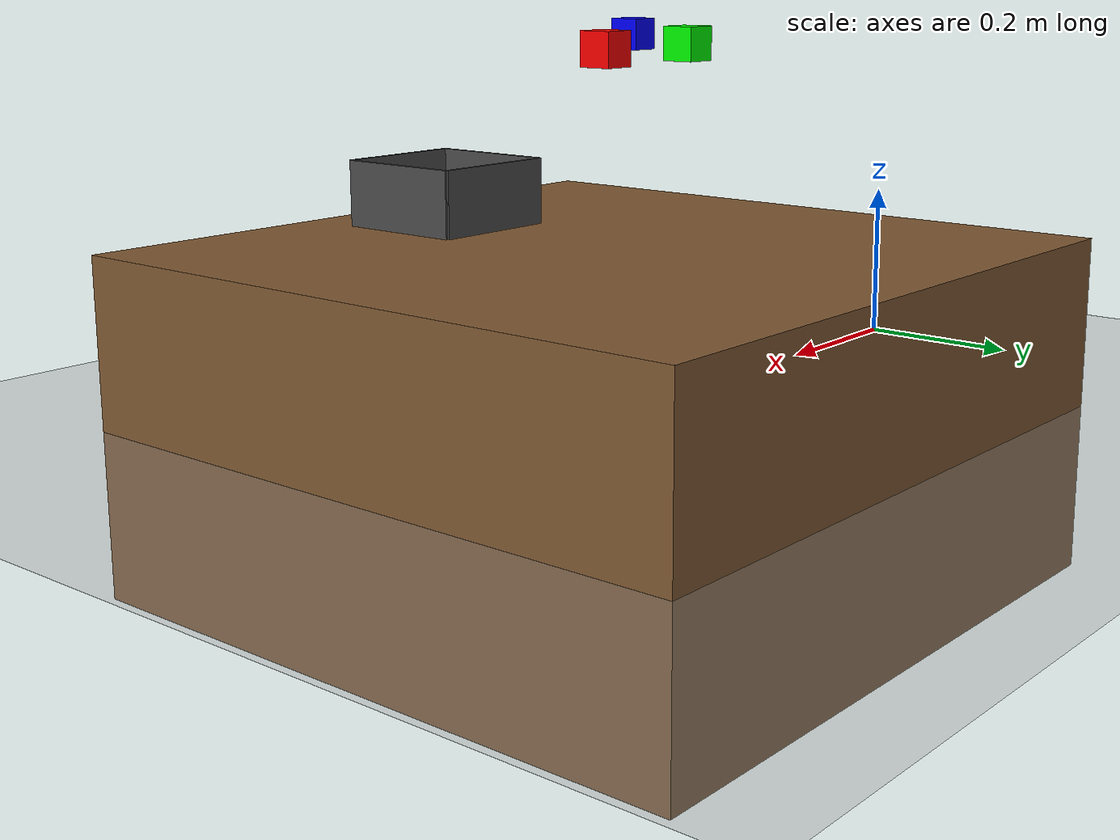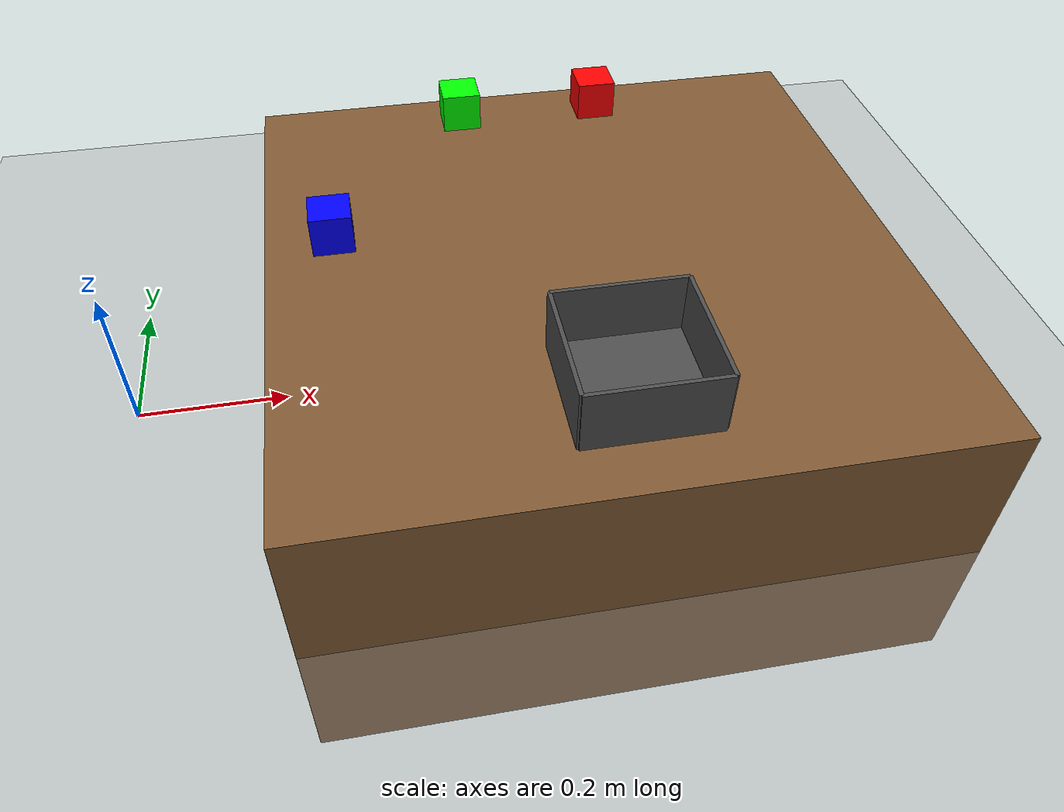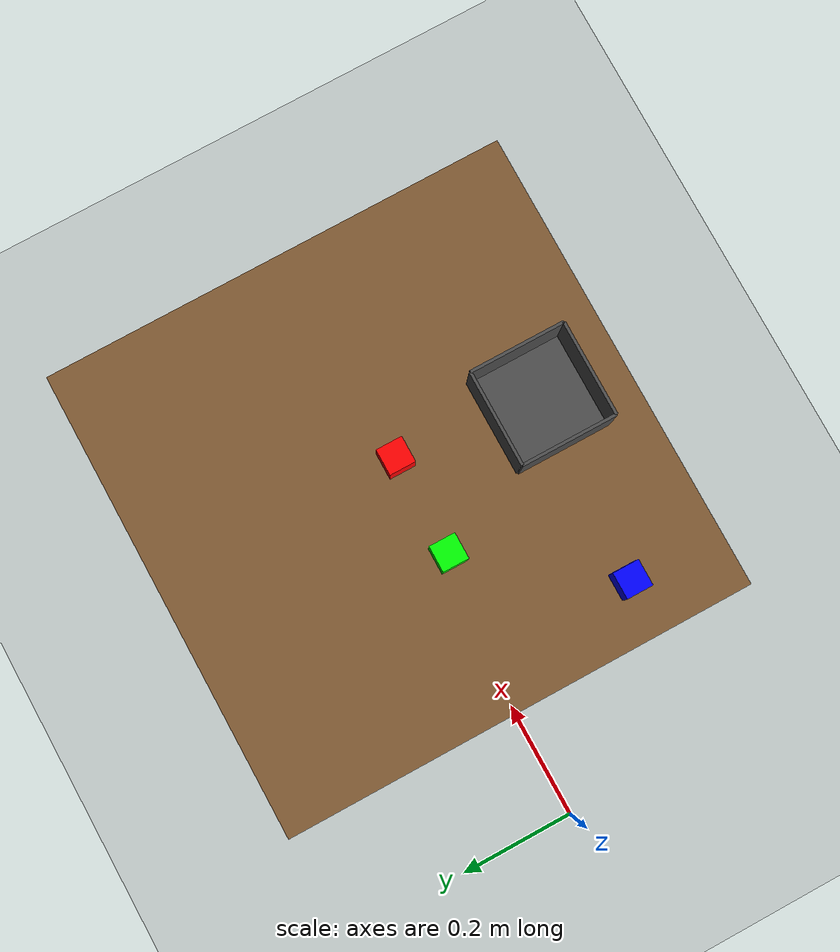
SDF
<?xml version="1.0"?>
<sdf version="1.8">

  <world name="color_sort_world">

    <!-- ==================== PHYSICS ==================== -->
    <physics name="physics" type="dart">
      <max_step_size>0.001</max_step_size>
      <real_time_factor>1.0</real_time_factor>
    </physics>

    <!-- ==================== SYSTEMS ==================== -->
    <plugin
      filename="ignition-gazebo-physics-system"
      name="ignition::gazebo::systems::Physics"/>

    <plugin
      filename="ignition-gazebo-user-commands-system"
      name="ignition::gazebo::systems::UserCommands"/>

    <plugin
      filename="ignition-gazebo-scene-broadcaster-system"
      name="ignition::gazebo::systems::SceneBroadcaster"/>

    <plugin
      filename="ignition-gazebo-sensors-system"
      name="ignition::gazebo::systems::Sensors">
      <render_engine>ogre2</render_engine>
    </plugin>

    <!-- ==================== SUN ==================== -->
    <light type="directional" name="sun">
      <cast_shadows>true</cast_shadows>
      <pose>0 0 10 0 0 0</pose>
      <diffuse>0.8 0.8 0.8 1</diffuse>
      <specular>0.2 0.2 0.2 1</specular>
      <direction>-0.5 0.1 -0.9</direction>
    </light>

    <!-- ==================== GROUND ==================== -->
    <model name="ground_plane">
      <static>true</static>

      <link name="link">

        <collision name="collision">
          <geometry>
            <plane>
              <normal>0 0 1</normal>
              <size>10 10</size>
            </plane>
          </geometry>
        </collision>

        <visual name="visual">
          <geometry>
            <plane>
              <normal>0 0 1</normal>
              <size>10 10</size>
            </plane>
          </geometry>

          <material>
            <ambient>0.6 0.6 0.6 1</ambient>
            <diffuse>0.6 0.6 0.6 1</diffuse>
          </material>
        </visual>

      </link>
    </model>

    <!-- ==================== TABLE ==================== -->
    <model name="sort_table">
      <static>true</static>
      <pose>0.6 0 0 0 0 0</pose>

      <link name="link">

        <collision name="collision">
          <geometry>
            <box>
              <size>0.8 0.8 0.4</size>
            </box>
          </geometry>
        </collision>

        <visual name="visual">
          <geometry>
            <box>
              <size>0.8 0.8 0.4</size>
            </box>
          </geometry>

          <material>
            <ambient>0.5 0.35 0.2 1</ambient>
            <diffuse>0.5 0.35 0.2 1</diffuse>
          </material>
        </visual>

      </link>
    </model>

    <!-- ==================== CAMERA ==================== -->
    <model name="overhead_camera">
      <static>true</static>
      <pose>0.6 0 1.4 0 1.5708 0</pose>

      <link name="link">

        <sensor name="camera_sensor" type="camera">
          <camera>
            <horizontal_fov>1.047</horizontal_fov>

            <image>
              <width>640</width>
              <height>480</height>
            </image>

            <clip>
              <near>0.05</near>
              <far>5</far>
            </clip>
          </camera>

          <always_on>true</always_on>
          <update_rate>30</update_rate>
          <visualize>true</visualize>
          <topic>camera/image_raw</topic>
        </sensor>

      </link>
    </model>

    <!-- ==================== GREEN CUBE ==================== -->
    <model name="green_cube">
      <pose>0.45 0.00 0.42 0 0 0</pose>

      <link name="link">

        <inertial>
          <mass>0.05</mass>

          <inertia>
            <ixx>1.333e-5</ixx>
            <iyy>1.333e-5</iyy>
            <izz>1.333e-5</izz>
            <ixy>0</ixy>
            <ixz>0</ixz>
            <iyz>0</iyz>
          </inertia>
        </inertial>

        <collision name="collision">
          <geometry>
            <box>
              <size>0.04 0.04 0.04</size>
            </box>
          </geometry>
        </collision>

        <visual name="visual">
          <geometry>
            <box>
              <size>0.04 0.04 0.04</size>
            </box>
          </geometry>

          <material>
            <ambient>0 1 0 1</ambient>
            <diffuse>0 1 0 1</diffuse>
          </material>
        </visual>

      </link>
    </model>

    <!-- ==================== RED CUBE ==================== -->
    <model name="red_cube">
      <pose>0.60 0.00 0.42 0 0 0</pose>

      <link name="link">

        <inertial>
          <mass>0.05</mass>

          <inertia>
            <ixx>1.333e-5</ixx>
            <iyy>1.333e-5</iyy>
            <izz>1.333e-5</izz>
            <ixy>0</ixy>
            <ixz>0</ixz>
            <iyz>0</iyz>
          </inertia>
        </inertial>

        <collision name="collision">
          <geometry>
            <box>
              <size>0.04 0.04 0.04</size>
            </box>
          </geometry>
        </collision>

        <visual name="visual">
          <geometry>
            <box>
              <size>0.04 0.04 0.04</size>
            </box>
          </geometry>

          <material>
            <ambient>1 0 0 1</ambient>
            <diffuse>1 0 0 1</diffuse>
          </material>
        </visual>

      </link>
    </model>

    <!-- ==================== BLUE CUBE ==================== -->
    <model name="blue_cube">
      <pose>0.30 -0.20 0.42 0 0 0</pose>

      <link name="link">

        <inertial>
          <mass>0.05</mass>

          <inertia>
            <ixx>1.333e-5</ixx>
            <iyy>1.333e-5</iyy>
            <izz>1.333e-5</izz>
            <ixy>0</ixy>
            <ixz>0</ixz>
            <iyz>0</iyz>
          </inertia>
        </inertial>

        <collision name="collision">
          <geometry>
            <box>
              <size>0.04 0.04 0.04</size>
            </box>
          </geometry>
        </collision>

        <visual name="visual">
          <geometry>
            <box>
              <size>0.04 0.04 0.04</size>
            </box>
          </geometry>

          <material>
            <ambient>0 0 1 1</ambient>
            <diffuse>0 0 1 1</diffuse>
          </material>
        </visual>

      </link>
    </model>

    <!-- ==================== DROP BASKET ==================== -->
    <model name="drop_basket">
      <static>true</static>
      <pose>0.6 -0.25 0.2 0 0 0</pose>

      <link name="link">

        <!-- Floor -->
        <collision name="floor">
          <pose>0 0 0.0025 0 0 0</pose>

          <geometry>
            <box>
              <size>0.16 0.16 0.005</size>
            </box>
          </geometry>
        </collision>

        <visual name="floor_visual">
          <pose>0 0 0.0025 0 0 0</pose>

          <geometry>
            <box>
              <size>0.16 0.16 0.005</size>
            </box>
          </geometry>

          <material>
            <ambient>0.3 0.3 0.3 1</ambient>
            <diffuse>0.3 0.3 0.3 1</diffuse>
          </material>
        </visual>

        <!-- +X Wall -->
        <collision name="wall_plus_x">
          <pose>0.08 0 0.04 0 0 0</pose>

          <geometry>
            <box>
              <size>0.005 0.16 0.08</size>
            </box>
          </geometry>
        </collision>

        <visual name="wall_plus_x_visual">
          <pose>0.08 0 0.04 0 0 0</pose>

          <geometry>
            <box>
              <size>0.005 0.16 0.08</size>
            </box>
          </geometry>

          <material>
            <ambient>0.3 0.3 0.3 1</ambient>
            <diffuse>0.3 0.3 0.3 1</diffuse>
          </material>
        </visual>

        <!-- -X Wall -->
        <collision name="wall_minus_x">
          <pose>-0.08 0 0.04 0 0 0</pose>

          <geometry>
            <box>
              <size>0.005 0.16 0.08</size>
            </box>
          </geometry>
        </collision>

        <visual name="wall_minus_x_visual">
          <pose>-0.08 0 0.04 0 0 0</pose>

          <geometry>
            <box>
              <size>0.005 0.16 0.08</size>
            </box>
          </geometry>

          <material>
            <ambient>0.3 0.3 0.3 1</ambient>
            <diffuse>0.3 0.3 0.3 1</diffuse>
          </material>
        </visual>

        <!-- +Y Wall -->
        <collision name="wall_plus_y">
          <pose>0 0.08 0.04 0 0 0</pose>

          <geometry>
            <box>
              <size>0.16 0.005 0.08</size>
            </box>
          </geometry>
        </collision>

        <visual name="wall_plus_y_visual">
          <pose>0 0.08 0.04 0 0 0</pose>

          <geometry>
            <box>
              <size>0.16 0.005 0.08</size>
            </box>
          </geometry>

          <material>
            <ambient>0.3 0.3 0.3 1</ambient>
            <diffuse>0.3 0.3 0.3 1</diffuse>
          </material>
        </visual>

        <!-- -Y Wall -->
        <collision name="wall_minus_y">
          <pose>0 -0.08 0.04 0 0 0</pose>

          <geometry>
            <box>
              <size>0.16 0.005 0.08</size>
            </box>
          </geometry>
        </collision>

        <visual name="wall_minus_y_visual">
          <pose>0 -0.08 0.04 0 0 0</pose>

          <geometry>
            <box>
              <size>0.16 0.005 0.08</size>
            </box>
          </geometry>

          <material>
            <ambient>0.3 0.3 0.3 1</ambient>
            <diffuse>0.3 0.3 0.3 1</diffuse>
          </material>
        </visual>

      </link>
    </model>

  </world>

</sdf>
